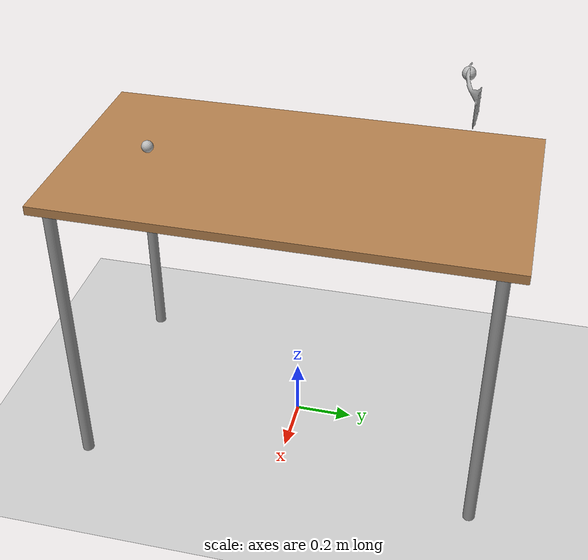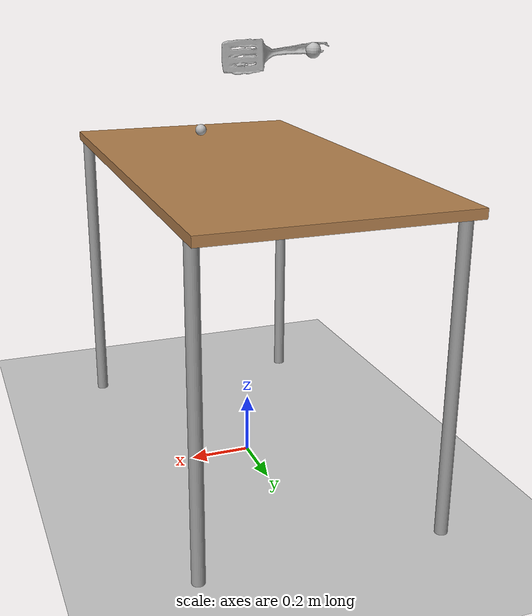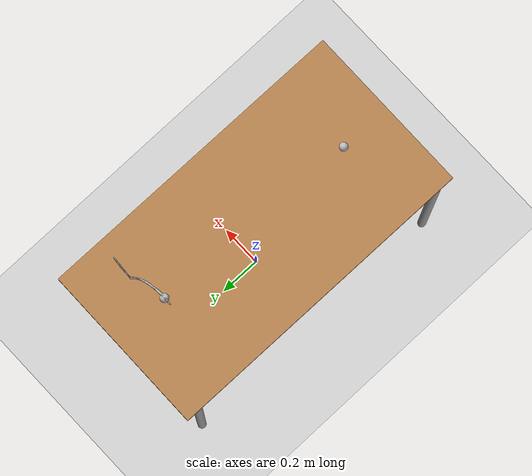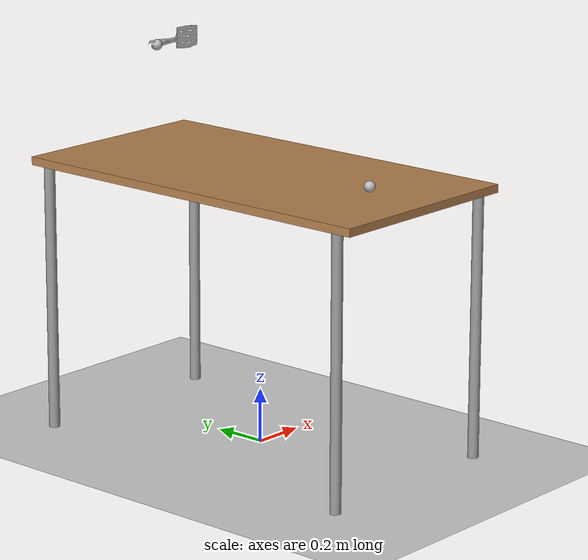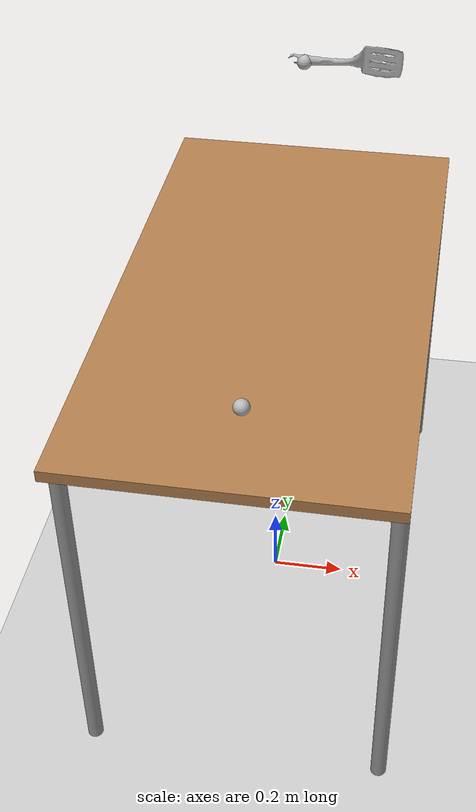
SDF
<sdf version="1.6">
    <world name="scraping">

        <include>
            <uri>model://sun</uri>
        </include>

        <include>
            <uri>model://ground_plane</uri>
        </include>

        <include>
            <uri>model://table</uri>
            <pose>0 0 0 0 0 -1.57694</pose>
            <static>true</static>
        </include>

        <include>
            <uri>model://b_spatula</uri>
            <pose>0.140489 0.527566 1.397957 1.571605 -0.058101 -2.939758</pose>
        </include>

        <plugin name="lasagna_factory" filename="libLasagnaFactoryPlugin.so">
          <pose>0 0 1.035 0 0 0</pose>
          <size>8 8 2</size>
          <radius>0.01</radius>
          <friction>0.1</friction>
          <friction2>0.1</friction2>
          <jointDamping>10</jointDamping>
          <jointFriction>5</jointFriction>
        </plugin>

        <!-- Left Gripper -->
        <include>
            <uri>model://gripper</uri>
            <name>left_ee</name>
            <pose>0 0.5 1.4 0 0 0</pose>

            <plugin name="l_force_controller" filename="libvelocity_controller_plugin.so">
              <linkName>link</linkName>
              <topicName>set_l_ee_twist</topicName>
              <gains>
                <linear>
                  <P>100.0</P>
                  <I>0.0</I>
                  <D>25.0</D>
                </linear>
                <angular>
                  <P>100.0</P>
                  <I>0.0</I>
                  <D>25.0</D>
                </angular>
              </gains>
            </plugin>

            <plugin name="l_grip" filename="libGripPlugin.so">
              <parentLinkName>link</parentLinkName>
              <childLinkName>b_spatula::link</childLinkName>
              <relativePose>0.14 0.028 -0.002 -1.57 3.20 0.20</relativePose>
            </plugin>

            <plugin name="l_tf_broadcaster" filename="libtf_broadcaster_plugin.so">
              <linkName>link</linkName>
              <frameName>l_gripper_tool_frame</frameName>
            </plugin>
        </include>

        <!-- Right Gripper -->
        <include>
            <uri>model://gripper</uri>
            <name>right_ee</name>
            <pose>0 -0.5 1.039100 1.547368 1.402341 1.343703</pose>

            <plugin name="r_force_controller" filename="libvelocity_controller_plugin.so">
              <linkName>link</linkName>
              <topicName>set_r_ee_twist</topicName>
              <gains>
                <linear>
                  <P>100.0</P>
                  <I>0.0</I>
                  <D>25.0</D>
                </linear>
                <angular>
                  <P>100.0</P>
                  <I>0.0</I>
                  <D>25.0</D>
                </angular>
              </gains>
            </plugin>

            <plugin name="r_tf_broadcaster" filename="libtf_broadcaster_plugin.so">
              <linkName>link</linkName>
              <frameName>r_gripper_tool_frame</frameName>
            </plugin>
        </include>

        <gui>
            <camera name='user_camera'>
                <pose>1.700789 1.175709 1.670612 0 0.375643 -2.675000</pose>
                <view_controller>orbit</view_controller>
            </camera>
        </gui>

    </world>
</sdf>

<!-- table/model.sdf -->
<sdf version="1.5">
  <model name="table">
    <static>true</static>
    <link name="link">
      <collision name="surface">
        <pose>0 0 1.0 0 0 0</pose>
        <geometry>
          <box>
            <size>1.5 0.8 0.03</size>
          </box>
        </geometry>
        <surface>
          <friction>
            <ode>
              <mu>0.6</mu>
              <mu2>0.6</mu2>
            </ode>
          </friction>
        </surface>
      </collision>
      <visual name="visual1">
        <pose>0 0 1.0 0 0 0</pose>
        <geometry>
          <box>
            <size>1.5 0.8 0.03</size>
          </box>
        </geometry>
        <material>
          <script>
            <uri>model://media/materials/scripts/gazebo.material</uri>
            <name>Gazebo/Wood</name>
          </script>
        </material>
      </visual>
      <collision name="front_left_leg">
        <pose>0.68 0.38 0.5 0 0 0</pose>
        <geometry>
          <cylinder>
            <radius>0.02</radius>
            <length>1.0</length>
          </cylinder>
        </geometry>
      </collision>
      <visual name="front_left_leg">
        <pose>0.68 0.38 0.5 0 0 0</pose>
        <geometry>
          <cylinder>
            <radius>0.02</radius>
            <length>1.0</length>
          </cylinder>
        </geometry>
        <material>
          <script>
            <uri>model://media/materials/scripts/gazebo.material</uri>
            <name>Gazebo/Grey</name>
          </script>
        </material>
      </visual>
      <collision name="front_right_leg">
        <pose>0.68 -0.38 0.5 0 0 0</pose>
        <geometry>
          <cylinder>
            <radius>0.02</radius>
            <length>1.0</length>
          </cylinder>
        </geometry>
      </collision>
      <visual name="front_right_leg">
        <pose>0.68 -0.38 0.5 0 0 0</pose>
        <geometry>
          <cylinder>
            <radius>0.02</radius>
            <length>1.0</length>
          </cylinder>
        </geometry>
        <material>
          <script>
            <uri>model://media/materials/scripts/gazebo.material</uri>
            <name>Gazebo/Grey</name>
          </script>
        </material>
      </visual>
      <collision name="back_right_leg">
        <pose>-0.68 -0.38 0.5 0 0 0</pose>
        <geometry>
          <cylinder>
            <radius>0.02</radius>
            <length>1.0</length>
          </cylinder>
        </geometry>
      </collision>
      <visual name="back_right_leg">
        <pose>-0.68 -0.38 0.5 0 0 0</pose>
        <geometry>
          <cylinder>
            <radius>0.02</radius>
            <length>1.0</length>
          </cylinder>
        </geometry>
        <material>
          <script>
            <uri>model://media/materials/scripts/gazebo.material</uri>
            <name>Gazebo/Grey</name>
          </script>
        </material>
      </visual>
      <collision name="back_left_leg">
        <pose>-0.68 0.38 0.5 0 0 0</pose>
        <geometry>
          <cylinder>
            <radius>0.02</radius>
            <length>1.0</length>
          </cylinder>
        </geometry>
      </collision>
      <visual name="back_left_leg">
        <pose>-0.68 0.38 0.5 0 0 0</pose>
        <geometry>
          <cylinder>
            <radius>0.02</radius>
            <length>1.0</length>
          </cylinder>
        </geometry>
        <material>
          <script>
            <uri>model://media/materials/scripts/gazebo.material</uri>
            <name>Gazebo/Grey</name>
          </script>
        </material>
      </visual>
    </link>
  </model>
</sdf>

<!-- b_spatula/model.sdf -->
<sdf version='1.6'>
	<model name='b_spatula'>
		<static>false</static>
		<pose>0 0 0 0 0 0</pose>

		<link name='link'>
			<inertial>
			<mass>0.11</mass>
			<pose>0.00088072 -6.5132e-05 0.00086388 0 0 0</pose>
				<inertia>
					<ixx>8.1404e-07</ixx>
					<ixy>0</ixy>
					<ixz>0</ixz>
					<iyy>1.1521e-06</iyy>
					<iyz>0</iyz>
					<izz>5.3661e-07</izz>
				</inertia>
			</inertial>

			<sensor name="tool_contact_sensor" type="contact">
				<always_on>true</always_on>
				<update_rate>30.0</update_rate>
				<contact>
					<collision>collision</collision>
				</contact>
				<plugin name="tool_bumper" filename="libgazebo_ros_bumper.so">
					<bumperTopicName>tool_contact_sensor_state</bumperTopicName>
					<frameName>world</frameName>
				</plugin>
			</sensor>

			<collision name='collision'>
				<geometry>
					<mesh>
						<uri>model://b_spatula/b_spatula.dae</uri>
					</mesh>
				</geometry>
				<surface>
					<friction>
						<ode>
							<mu>0.2</mu>
							<mu2>0.2</mu2>
						</ode>
					</friction>
				</surface>
			</collision>
			<visual name='visual'>
				<geometry>
					<mesh>
						<uri>model://b_spatula/b_spatula.dae</uri>
					</mesh>
				</geometry>
			</visual>
		</link>
	</model>
</sdf>

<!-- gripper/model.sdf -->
<sdf version='1.6'>
    <model name='gripper'>
        <static>false</static>
        <allow_auto_disable>false</allow_auto_disable>

        <pose>0 0 0 0 0 0</pose>

        <link name='link'>
            <pose>0 0 0 0 0 0</pose>

            <gravity>false</gravity>

            <visual name='visual'>
                <geometry>
                    <sphere>
                        <radius>0.02</radius>
                    </sphere>
                </geometry>
            </visual>

        </link>
    </model>
</sdf>
